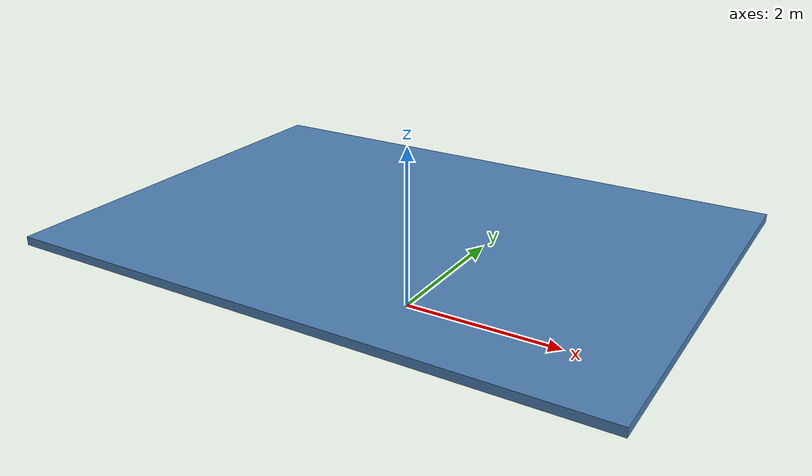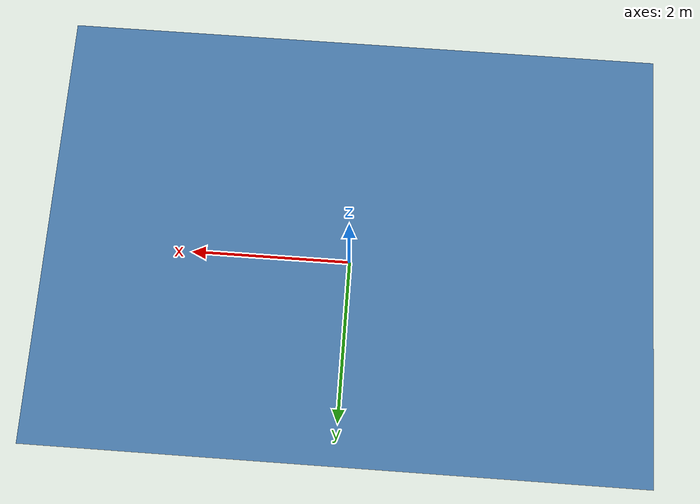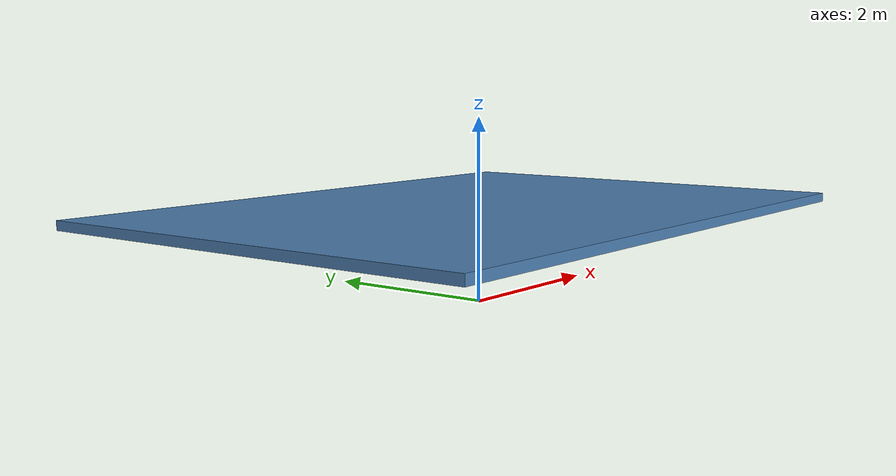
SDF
<?xml version="1.0" encoding="UTF-8"?>
<sdf version="1.9">
  <model name="solar_panel">
    <static>false</static>
    <link name="solar_panel_link">
      <collision name="collision">
        <geometry>
          <box>
            <size>5 3 0.1</size>  <!-- Adjust size of the panel -->
          </box>
        </geometry>
      </collision>
      <visual name="visual">
        <geometry>
          <box>
            <size>7 5 0.1</size>  <!-- Adjust size of the panel -->
          </box>
        </geometry>
        <material>
          <ambient>0.3 0.5 0.7 1</ambient>  <!-- More blue shade -->
          <diffuse>0.3 0.5 0.7 1</diffuse>  <!-- More blue shade -->
          <specular>0.1 0.1 0.1 1</specular>  <!-- Matte finish -->
        </material>
      </visual>
    </link>
    <pose>0 0 1 0 0 0</pose>  <!-- Position of the solar panel -->
  </model>
</sdf>
